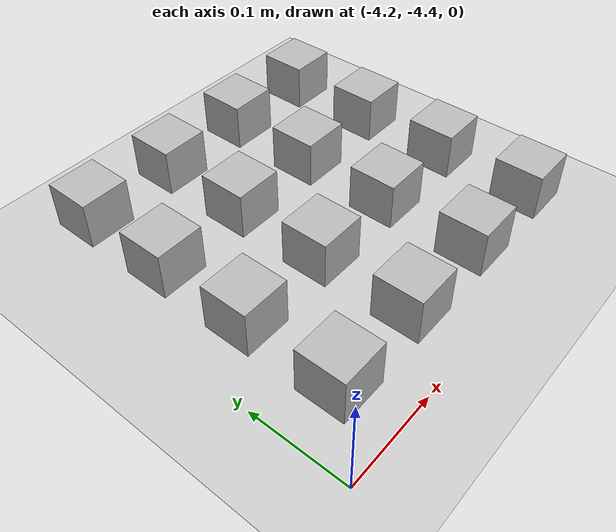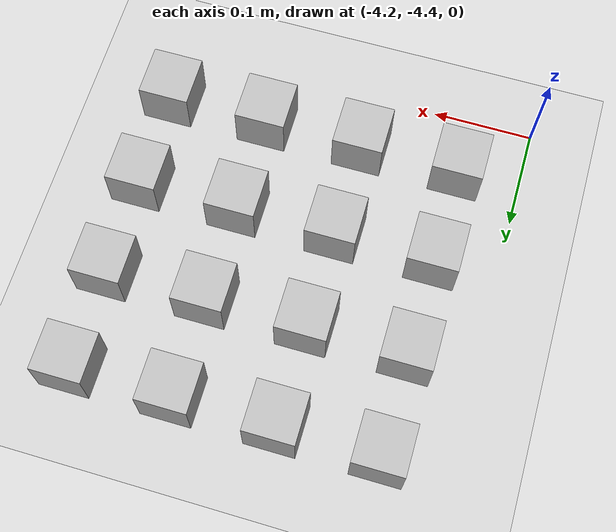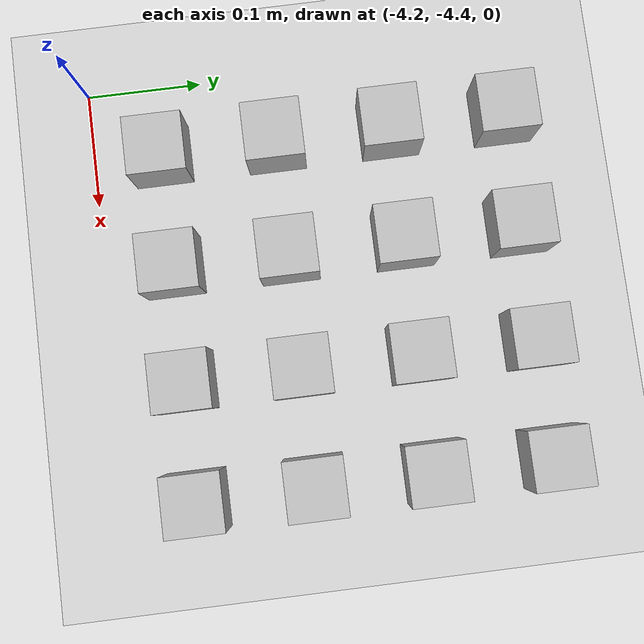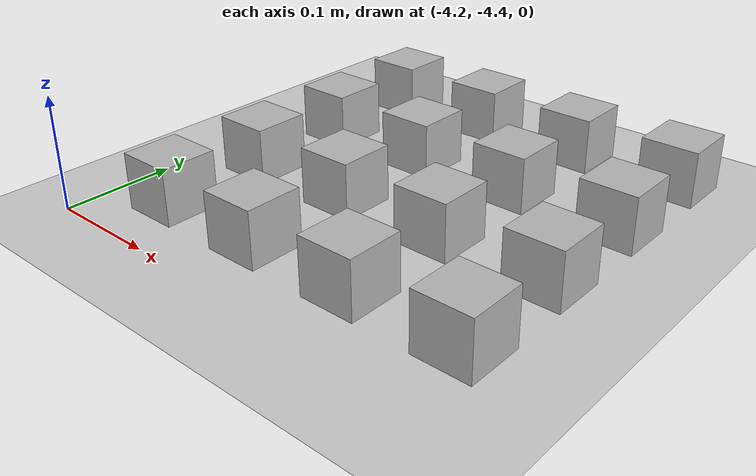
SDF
<sdf version="1.6">
 <world name="default">
  <model name="ground_plane">
   <static>1</static>
   <link name="link">
    <collision name="collision">
     <geometry><plane><normal>0 0 1</normal><size>100 100</size></plane></geometry>
     <surface><friction><ode><mu>100</mu><mu2>50</mu2></ode></friction></surface>
    </collision>
    <visual name="visual">
     <cast_shadows>0</cast_shadows>
     <geometry><plane><normal>0 0 1</normal><size>100 100</size></plane></geometry>
     <material>
      <script><uri>file://media/materials/scripts/gazebo.material</uri><name>Gazebo/Grey</name></script>
     </material>
    </visual>
   </link>
  </model>
  <model name="at16">
   <static>0</static>
   <link name="link">
    <inertial>
     <mass>0.01</mass>
     <inertia><ixx>4e-05</ixx><ixy>0</ixy><ixz>0</ixz><iyy>4e-05</iyy><iyz>0</iyz><izz>4e-05</izz></inertia>
    </inertial>
    <visual name="visual">
     <geometry><box><size>0.05 0.05 0.05</size></box></geometry>
     <material>
      <script>
       <uri>model://at0/materials/scripts</uri>
       <uri>model://at0/materials/textures</uri>
       <name>at0/Diffuse</name>
      </script>
     </material>
    </visual>
    <collision name="collision">
     <geometry><box><size>0.05 0.05 0.05</size></box></geometry>
     <surface><friction><ode><mu>0.8</mu><mu2>0.7</mu2></ode></friction></surface>
    </collision>
   </link>
   <pose>-4.13691 -4.33941 0.025 0 -0 0</pose>
  </model>
  <model name="at17">
   <static>0</static>
   <link name="link">
    <inertial>
     <mass>0.01</mass>
     <inertia><ixx>4e-05</ixx><ixy>0</ixy><ixz>0</ixz><iyy>4e-05</iyy><iyz>0</iyz><izz>4e-05</izz></inertia>
    </inertial>
    <visual name="visual">
     <geometry><box><size>0.05 0.05 0.05</size></box></geometry>
     <material>
      <script>
       <uri>model://at0/materials/scripts</uri>
       <uri>model://at0/materials/textures</uri>
       <name>at0/Diffuse</name>
      </script>
     </material>
    </visual>
    <collision name="collision">
     <geometry><box><size>0.05 0.05 0.05</size></box></geometry>
     <surface><friction><ode><mu>0.8</mu><mu2>0.7</mu2></ode></friction></surface>
    </collision>
   </link>
   <pose>-4.03691 -4.33941 0.025 0 -0 0</pose>
  </model>
  <model name="at18">
   <static>0</static>
   <link name="link">
    <inertial>
     <mass>0.01</mass>
     <inertia><ixx>4e-05</ixx><ixy>0</ixy><ixz>0</ixz><iyy>4e-05</iyy><iyz>0</iyz><izz>4e-05</izz></inertia>
    </inertial>
    <visual name="visual">
     <geometry><box><size>0.05 0.05 0.05</size></box></geometry>
     <material>
      <script>
       <uri>model://at0/materials/scripts</uri>
       <uri>model://at0/materials/textures</uri>
       <name>at0/Diffuse</name>
      </script>
     </material>
    </visual>
    <collision name="collision">
     <geometry><box><size>0.05 0.05 0.05</size></box></geometry>
     <surface><friction><ode><mu>0.8</mu><mu2>0.7</mu2></ode></friction></surface>
    </collision>
   </link>
   <pose>-3.93691 -4.33941 0.025 0 -0 0</pose>
  </model>
  <model name="at19">
   <static>0</static>
   <link name="link">
    <inertial>
     <mass>0.01</mass>
     <inertia><ixx>4e-05</ixx><ixy>0</ixy><ixz>0</ixz><iyy>4e-05</iyy><iyz>0</iyz><izz>4e-05</izz></inertia>
    </inertial>
    <visual name="visual">
     <geometry><box><size>0.05 0.05 0.05</size></box></geometry>
     <material>
      <script>
       <uri>model://at0/materials/scripts</uri>
       <uri>model://at0/materials/textures</uri>
       <name>at0/Diffuse</name>
      </script>
     </material>
    </visual>
    <collision name="collision">
     <geometry><box><size>0.05 0.05 0.05</size></box></geometry>
     <surface><friction><ode><mu>0.8</mu><mu2>0.7</mu2></ode></friction></surface>
    </collision>
   </link>
   <pose>-3.83691 -4.33941 0.025 0 -0 0</pose>
  </model>
  <model name="at20">
   <static>0</static>
   <link name="link">
    <inertial>
     <mass>0.01</mass>
     <inertia><ixx>4e-05</ixx><ixy>0</ixy><ixz>0</ixz><iyy>4e-05</iyy><iyz>0</iyz><izz>4e-05</izz></inertia>
    </inertial>
    <visual name="visual">
     <geometry><box><size>0.05 0.05 0.05</size></box></geometry>
     <material>
      <script>
       <uri>model://at0/materials/scripts</uri>
       <uri>model://at0/materials/textures</uri>
       <name>at0/Diffuse</name>
      </script>
     </material>
    </visual>
    <collision name="collision">
     <geometry><box><size>0.05 0.05 0.05</size></box></geometry>
     <surface><friction><ode><mu>0.8</mu><mu2>0.7</mu2></ode></friction></surface>
    </collision>
   </link>
   <pose>-4.13691 -4.23941 0.025 0 -0 0</pose>
  </model>
  <model name="at21">
   <static>0</static>
   <link name="link">
    <inertial>
     <mass>0.01</mass>
     <inertia><ixx>4e-05</ixx><ixy>0</ixy><ixz>0</ixz><iyy>4e-05</iyy><iyz>0</iyz><izz>4e-05</izz></inertia>
    </inertial>
    <visual name="visual">
     <geometry><box><size>0.05 0.05 0.05</size></box></geometry>
     <material>
      <script>
       <uri>model://at0/materials/scripts</uri>
       <uri>model://at0/materials/textures</uri>
       <name>at0/Diffuse</name>
      </script>
     </material>
    </visual>
    <collision name="collision">
     <geometry><box><size>0.05 0.05 0.05</size></box></geometry>
     <surface><friction><ode><mu>0.8</mu><mu2>0.7</mu2></ode></friction></surface>
    </collision>
   </link>
   <pose>-4.03691 -4.23941 0.025 0 -0 0</pose>
  </model>
  <model name="at22">
   <static>0</static>
   <link name="link">
    <inertial>
     <mass>0.01</mass>
     <inertia><ixx>4e-05</ixx><ixy>0</ixy><ixz>0</ixz><iyy>4e-05</iyy><iyz>0</iyz><izz>4e-05</izz></inertia>
    </inertial>
    <visual name="visual">
     <geometry><box><size>0.05 0.05 0.05</size></box></geometry>
     <material>
      <script>
       <uri>model://at0/materials/scripts</uri>
       <uri>model://at0/materials/textures</uri>
       <name>at0/Diffuse</name>
      </script>
     </material>
    </visual>
    <collision name="collision">
     <geometry><box><size>0.05 0.05 0.05</size></box></geometry>
     <surface><friction><ode><mu>0.8</mu><mu2>0.7</mu2></ode></friction></surface>
    </collision>
   </link>
   <pose>-3.93691 -4.23941 0.025 0 -0 0</pose>
  </model>
  <model name="at23">
   <static>0</static>
   <link name="link">
    <inertial>
     <mass>0.01</mass>
     <inertia><ixx>4e-05</ixx><ixy>0</ixy><ixz>0</ixz><iyy>4e-05</iyy><iyz>0</iyz><izz>4e-05</izz></inertia>
    </inertial>
    <visual name="visual">
     <geometry><box><size>0.05 0.05 0.05</size></box></geometry>
     <material>
      <script>
       <uri>model://at0/materials/scripts</uri>
       <uri>model://at0/materials/textures</uri>
       <name>at0/Diffuse</name>
      </script>
     </material>
    </visual>
    <collision name="collision">
     <geometry><box><size>0.05 0.05 0.05</size></box></geometry>
     <surface><friction><ode><mu>0.8</mu><mu2>0.7</mu2></ode></friction></surface>
    </collision>
   </link>
   <pose>-3.83691 -4.23941 0.025 0 -0 0</pose>
  </model>
  <model name="at24">
   <static>0</static>
   <link name="link">
    <inertial>
     <mass>0.01</mass>
     <inertia><ixx>4e-05</ixx><ixy>0</ixy><ixz>0</ixz><iyy>4e-05</iyy><iyz>0</iyz><izz>4e-05</izz></inertia>
    </inertial>
    <visual name="visual">
     <geometry><box><size>0.05 0.05 0.05</size></box></geometry>
     <material>
      <script>
       <uri>model://at0/materials/scripts</uri>
       <uri>model://at0/materials/textures</uri>
       <name>at0/Diffuse</name>
      </script>
     </material>
    </visual>
    <collision name="collision">
     <geometry><box><size>0.05 0.05 0.05</size></box></geometry>
     <surface><friction><ode><mu>0.8</mu><mu2>0.7</mu2></ode></friction></surface>
    </collision>
   </link>
   <pose>-4.13691 -4.13941 0.025 0 -0 0</pose>
  </model>
  <model name="at25">
   <static>0</static>
   <link name="link">
    <inertial>
     <mass>0.01</mass>
     <inertia><ixx>4e-05</ixx><ixy>0</ixy><ixz>0</ixz><iyy>4e-05</iyy><iyz>0</iyz><izz>4e-05</izz></inertia>
    </inertial>
    <visual name="visual">
     <geometry><box><size>0.05 0.05 0.05</size></box></geometry>
     <material>
      <script>
       <uri>model://at0/materials/scripts</uri>
       <uri>model://at0/materials/textures</uri>
       <name>at0/Diffuse</name>
      </script>
     </material>
    </visual>
    <collision name="collision">
     <geometry><box><size>0.05 0.05 0.05</size></box></geometry>
     <surface><friction><ode><mu>0.8</mu><mu2>0.7</mu2></ode></friction></surface>
    </collision>
   </link>
   <pose>-4.03691 -4.13941 0.025 0 -0 0</pose>
  </model>
  <model name="at26">
   <static>0</static>
   <link name="link">
    <inertial>
     <mass>0.01</mass>
     <inertia><ixx>4e-05</ixx><ixy>0</ixy><ixz>0</ixz><iyy>4e-05</iyy><iyz>0</iyz><izz>4e-05</izz></inertia>
    </inertial>
    <visual name="visual">
     <geometry><box><size>0.05 0.05 0.05</size></box></geometry>
     <material>
      <script>
       <uri>model://at0/materials/scripts</uri>
       <uri>model://at0/materials/textures</uri>
       <name>at0/Diffuse</name>
      </script>
     </material>
    </visual>
    <collision name="collision">
     <geometry><box><size>0.05 0.05 0.05</size></box></geometry>
     <surface><friction><ode><mu>0.8</mu><mu2>0.7</mu2></ode></friction></surface>
    </collision>
   </link>
   <pose>-3.93691 -4.13941 0.025 0 -0 0</pose>
  </model>
  <model name="at27">
   <static>0</static>
   <link name="link">
    <inertial>
     <mass>0.01</mass>
     <inertia><ixx>4e-05</ixx><ixy>0</ixy><ixz>0</ixz><iyy>4e-05</iyy><iyz>0</iyz><izz>4e-05</izz></inertia>
    </inertial>
    <visual name="visual">
     <geometry><box><size>0.05 0.05 0.05</size></box></geometry>
     <material>
      <script>
       <uri>model://at0/materials/scripts</uri>
       <uri>model://at0/materials/textures</uri>
       <name>at0/Diffuse</name>
      </script>
     </material>
    </visual>
    <collision name="collision">
     <geometry><box><size>0.05 0.05 0.05</size></box></geometry>
     <surface><friction><ode><mu>0.8</mu><mu2>0.7</mu2></ode></friction></surface>
    </collision>
   </link>
   <pose>-3.83691 -4.13941 0.025 0 -0 0</pose>
  </model>
  <model name="at28">
   <static>0</static>
   <link name="link">
    <inertial>
     <mass>0.01</mass>
     <inertia><ixx>4e-05</ixx><ixy>0</ixy><ixz>0</ixz><iyy>4e-05</iyy><iyz>0</iyz><izz>4e-05</izz></inertia>
    </inertial>
    <visual name="visual">
     <geometry><box><size>0.05 0.05 0.05</size></box></geometry>
     <material>
      <script>
       <uri>model://at0/materials/scripts</uri>
       <uri>model://at0/materials/textures</uri>
       <name>at0/Diffuse</name>
      </script>
     </material>
    </visual>
    <collision name="collision">
     <geometry><box><size>0.05 0.05 0.05</size></box></geometry>
     <surface><friction><ode><mu>0.8</mu><mu2>0.7</mu2></ode></friction></surface>
    </collision>
   </link>
   <pose>-4.13691 -4.03941 0.025 0 -0 0</pose>
  </model>
  <model name="at29">
   <static>0</static>
   <link name="link">
    <inertial>
     <mass>0.01</mass>
     <inertia><ixx>4e-05</ixx><ixy>0</ixy><ixz>0</ixz><iyy>4e-05</iyy><iyz>0</iyz><izz>4e-05</izz></inertia>
    </inertial>
    <visual name="visual">
     <geometry><box><size>0.05 0.05 0.05</size></box></geometry>
     <material>
      <script>
       <uri>model://at0/materials/scripts</uri>
       <uri>model://at0/materials/textures</uri>
       <name>at0/Diffuse</name>
      </script>
     </material>
    </visual>
    <collision name="collision">
     <geometry><box><size>0.05 0.05 0.05</size></box></geometry>
     <surface><friction><ode><mu>0.8</mu><mu2>0.7</mu2></ode></friction></surface>
    </collision>
   </link>
   <pose>-4.03691 -4.03941 0.025 0 -0 0</pose>
  </model>
  <model name="at30">
   <static>0</static>
   <link name="link">
    <inertial>
     <mass>0.01</mass>
     <inertia><ixx>4e-05</ixx><ixy>0</ixy><ixz>0</ixz><iyy>4e-05</iyy><iyz>0</iyz><izz>4e-05</izz></inertia>
    </inertial>
    <visual name="visual">
     <geometry><box><size>0.05 0.05 0.05</size></box></geometry>
     <material>
      <script>
       <uri>model://at0/materials/scripts</uri>
       <uri>model://at0/materials/textures</uri>
       <name>at0/Diffuse</name>
      </script>
     </material>
    </visual>
    <collision name="collision">
     <geometry><box><size>0.05 0.05 0.05</size></box></geometry>
     <surface><friction><ode><mu>0.8</mu><mu2>0.7</mu2></ode></friction></surface>
    </collision>
   </link>
   <pose>-3.93691 -4.03941 0.025 0 -0 0</pose>
  </model>
  <model name="at31">
   <static>0</static>
   <link name="link">
    <inertial>
     <mass>0.01</mass>
     <inertia><ixx>4e-05</ixx><ixy>0</ixy><ixz>0</ixz><iyy>4e-05</iyy><iyz>0</iyz><izz>4e-05</izz></inertia>
    </inertial>
    <visual name="visual">
     <geometry><box><size>0.05 0.05 0.05</size></box></geometry>
     <material>
      <script>
       <uri>model://at0/materials/scripts</uri>
       <uri>model://at0/materials/textures</uri>
       <name>at0/Diffuse</name>
      </script>
     </material>
    </visual>
    <collision name="collision">
     <geometry><box><size>0.05 0.05 0.05</size></box></geometry>
     <surface><friction><ode><mu>0.8</mu><mu2>0.7</mu2></ode></friction></surface>
    </collision>
   </link>
   <pose>-3.83691 -4.03941 0.025 0 -0 0</pose>
  </model>
 </world>
</sdf>
